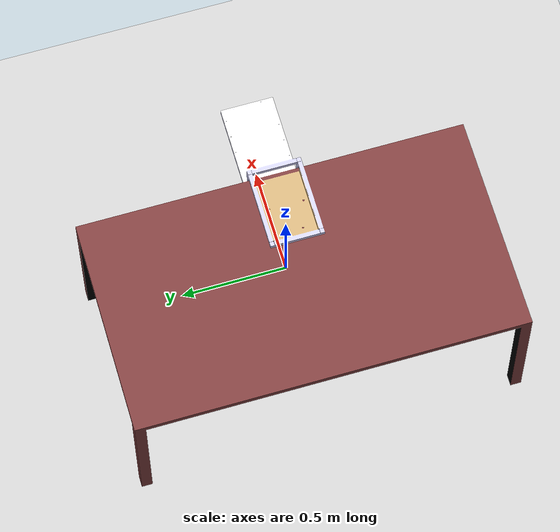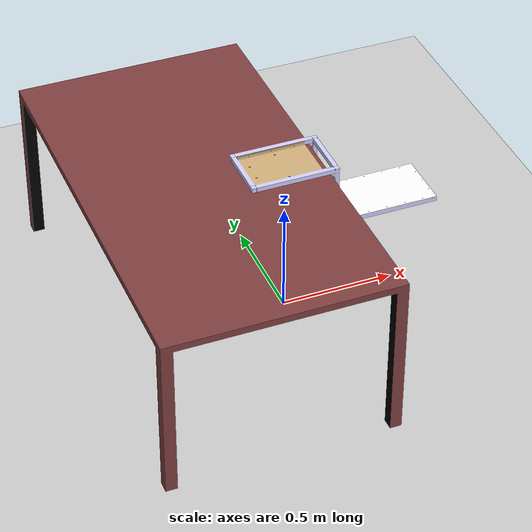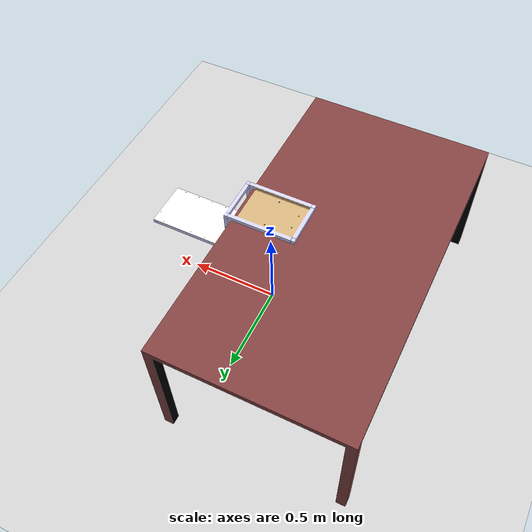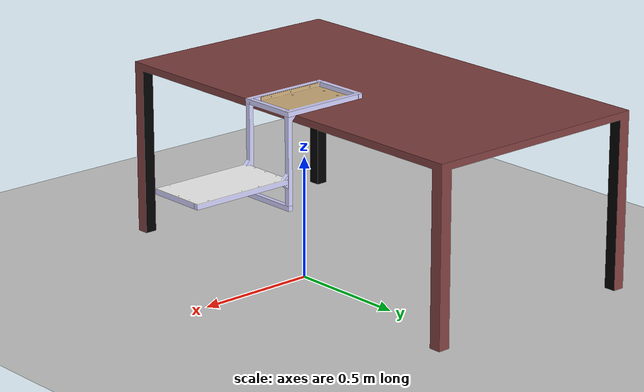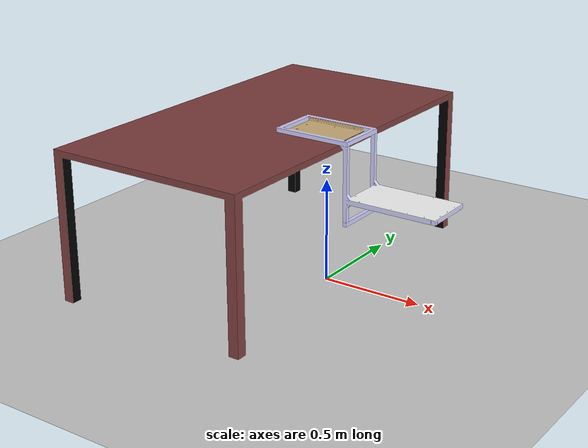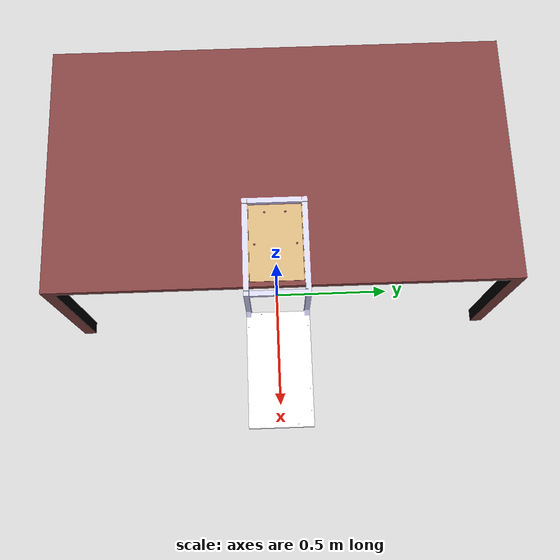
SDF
<?xml version="1.0" ?>
<sdf version="1.6">
  <world name="default">

    <include>
      <uri>model://ground_plane</uri>
    </include>

    <!-- Global light source -->
    <include>
      <uri>model://sun</uri>
    </include>

    <scene>
      <ambient>0.4 0.4 0.4 1</ambient>
      <background>0.7 0.7 0.7 1</background>
      <shadows>0</shadows>
    </scene>

    <light name='sun2' type='directional'>
      <cast_shadows>1</cast_shadows>
      <diffuse>0.7 0.7 0.7 1</diffuse>
      <specular>0.2 0.2 0.2 1</specular>
      <direction>-0.5 -0.5 -1</direction>
        <pose frame=''>15 0 10 0 0.35 0</pose>
      <attenuation>
        <range>5000</range>
        <constant>1</constant>
        <linear>0.1</linear>
        <quadratic>0.001</quadratic>
      </attenuation>
    </light>

    <gravity>0 0 -9.81</gravity>
    <physics name="default_physics" default="0" type="ode">
      <max_step_size>0.001</max_step_size>
      <real_time_factor>1</real_time_factor>
      <real_time_update_rate>1000</real_time_update_rate>
      <ode>
        <solver>
          <type>quick</type>
          <iters>50</iters>
          <sor>1.0</sor> <!-- Important, see issue #2209 -->
          <use_dynamic_moi_rescaling>false</use_dynamic_moi_rescaling>
        </solver>
      </ode>
    </physics>

    <!-- Focus camera -->
    <gui fullscreen='0'>
      <camera name='user_camera'>
      	<pose>4.927360 -4.376610 3.740080 0.000000 0.275643 2.356190</pose>
      	<view_controller>orbit</view_controller>
      </camera>
    </gui>

    <!-- Base of the robot (table + structure in ALU) -->
    <include>
		  <uri>model://base_model</uri>
	  </include>

  </world>

</sdf>

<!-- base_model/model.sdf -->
<sdf version="1.6">
  <model name="base_model">
    <static>true</static>
    <link name="link">
		<pose frame=''>0 0 0.733 0 0 0</pose>
        <inertial>
          <mass>0.01</mass>
          <inertia>
            <ixx>0.1</ixx>
            <ixy>0.0</ixy>
            <ixz>0.0</ixz>
            <iyy>0.1</iyy>
            <iyz>0.0</iyz>
            <izz>0.1</izz>
          </inertia>
        </inertial>
        <gravity>1</gravity>
        <self_collide>0</self_collide>
        <kinematic>0</kinematic>

      <visual name="visual">
        <geometry>
          <mesh>
            <uri>model://base_model/meshes/base.dae</uri>
          </mesh>
        </geometry>
      </visual>
      <collision name="collision">
        <geometry>
          <mesh>
            <uri>model://base_model/meshes/base.stl</uri>
          </mesh>
        </geometry>
      </collision>
    </link>
    <allow_auto_disable>1</allow_auto_disable>
  </model>
</sdf>
